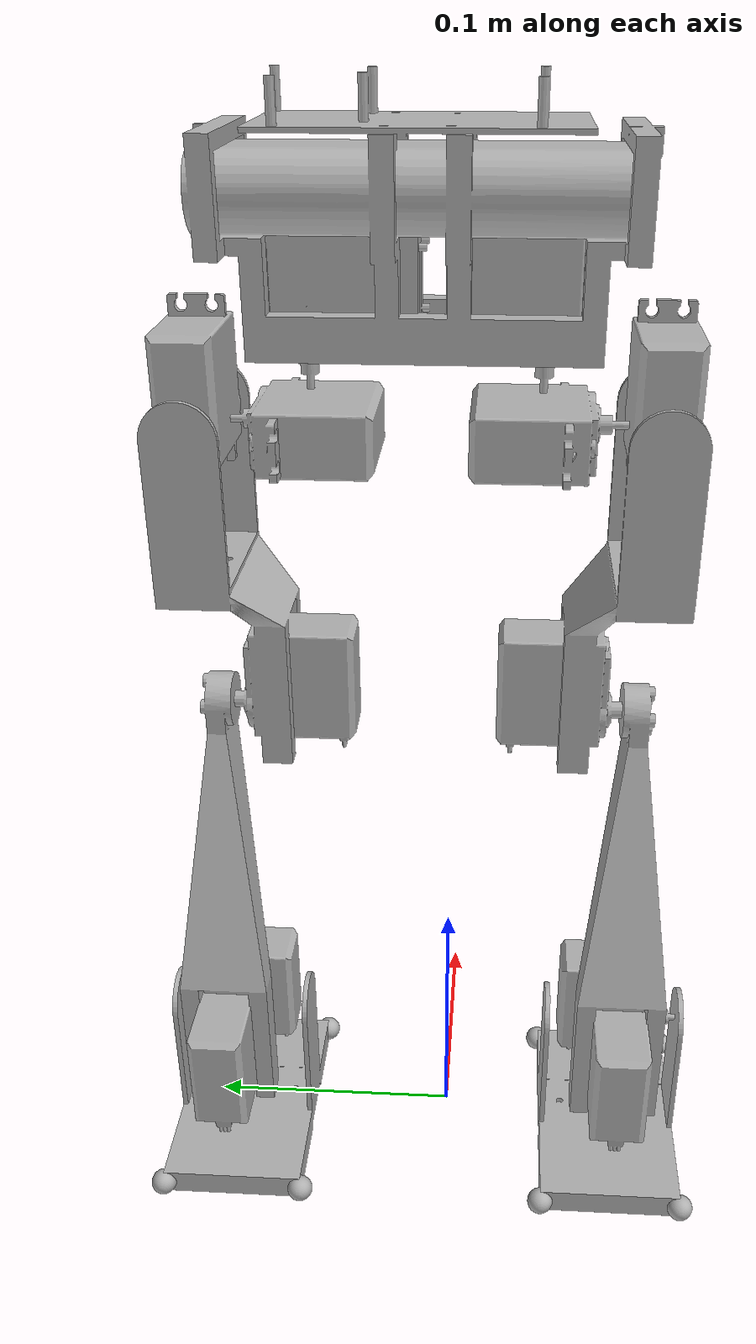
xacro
<?xml version="1.0" ?>
<robot name="URDF" xmlns:xacro="http://www.ros.org/wiki/xacro">

<xacro:include filename="$(find URDF_description)/urdf/materials.xacro" />
<xacro:include filename="$(find URDF_description)/urdf/URDF.trans" />
<xacro:include filename="$(find URDF_description)/urdf/URDF.gazebo" />
<link name="base_link">
  <inertial>
    <origin xyz="-0.011771950657531978 0.009504064144816108 0.37571758600306054" rpy="0 0 0"/>
    <mass value="1.511497628813241"/>
    <inertia ixx="0.002624" iyy="0.000685" izz="0.00252" ixy="-0.0" iyz="-1e-05" ixz="-1e-06"/>
  </inertial>
  <visual>
    <origin xyz="0 0 0" rpy="0 0 0"/>
    <geometry>
      <mesh filename="package://URDF_description/meshes/base_link.stl" scale="0.001 0.001 0.001"/>
    </geometry>
    <material name="silver"/>
  </visual>
  <collision>
    <origin xyz="0 0 0" rpy="0 0 0"/>
    <geometry>
      <mesh filename="package://URDF_description/meshes/base_link.stl" scale="0.001 0.001 0.001"/>
    </geometry>
  </collision>
</link>

<link name="l3_1">
  <inertial>
    <origin xyz="-0.0010554319034483655 -0.010177955025811834 0.009960650853470643" rpy="0 0 0"/>
    <mass value="0.2605710862815951"/>
    <inertia ixx="4.6e-05" iyy="7.1e-05" izz="4.2e-05" ixy="0.0" iyz="-0.0" ixz="1e-06"/>
  </inertial>
  <visual>
    <origin xyz="0.01125 0.056859 -0.309943" rpy="0 0 0"/>
    <geometry>
      <mesh filename="package://URDF_description/meshes/l3_1.stl" scale="0.001 0.001 0.001"/>
    </geometry>
    <material name="silver"/>
  </visual>
  <collision>
    <origin xyz="0.01125 0.056859 -0.309943" rpy="0 0 0"/>
    <geometry>
      <mesh filename="package://URDF_description/meshes/l3_1.stl" scale="0.001 0.001 0.001"/>
    </geometry>
  </collision>
</link>

<link name="r3_1">
  <inertial>
    <origin xyz="-0.0013721079730043672 0.010183257082743855 0.009960176961555767" rpy="0 0 0"/>
    <mass value="0.26058347817133687"/>
    <inertia ixx="4.6e-05" iyy="7.1e-05" izz="4.2e-05" ixy="-0.0" iyz="0.0" ixz="1e-06"/>
  </inertial>
  <visual>
    <origin xyz="0.010932 -0.07264 -0.309936" rpy="0 0 0"/>
    <geometry>
      <mesh filename="package://URDF_description/meshes/r3_1.stl" scale="0.001 0.001 0.001"/>
    </geometry>
    <material name="silver"/>
  </visual>
  <collision>
    <origin xyz="0.010932 -0.07264 -0.309936" rpy="0 0 0"/>
    <geometry>
      <mesh filename="package://URDF_description/meshes/r3_1.stl" scale="0.001 0.001 0.001"/>
    </geometry>
  </collision>
</link>

<link name="l4_1">
  <inertial>
    <origin xyz="-0.025108010465582926 0.020534482343404367 -0.07938539914440731" rpy="0 0 0"/>
    <mass value="0.4795683297989441"/>
    <inertia ixx="0.0005" iyy="0.000461" izz="0.000198" ixy="-3e-06" iyz="0.000142" ixz="6e-06"/>
  </inertial>
  <visual>
    <origin xyz="-0.015754 0.067037 -0.309943" rpy="0 0 0"/>
    <geometry>
      <mesh filename="package://URDF_description/meshes/l4_1.stl" scale="0.001 0.001 0.001"/>
    </geometry>
    <material name="silver"/>
  </visual>
  <collision>
    <origin xyz="-0.015754 0.067037 -0.309943" rpy="0 0 0"/>
    <geometry>
      <mesh filename="package://URDF_description/meshes/l4_1.stl" scale="0.001 0.001 0.001"/>
    </geometry>
  </collision>
</link>

<link name="l5_1">
  <inertial>
    <origin xyz="-0.029491082579912755 0.0039567541577464616 -0.10160071158979485" rpy="0 0 0"/>
    <mass value="0.5723786894338777"/>
    <inertia ixx="0.001158" iyy="0.001268" izz="0.00017" ixy="1e-06" iyz="2e-06" ixz="-0.000323"/>
  </inertial>
  <visual>
    <origin xyz="0.009024 0.071577 -0.204349" rpy="0 0 0"/>
    <geometry>
      <mesh filename="package://URDF_description/meshes/l5_1.stl" scale="0.001 0.001 0.001"/>
    </geometry>
    <material name="silver"/>
  </visual>
  <collision>
    <origin xyz="0.009024 0.071577 -0.204349" rpy="0 0 0"/>
    <geometry>
      <mesh filename="package://URDF_description/meshes/l5_1.stl" scale="0.001 0.001 0.001"/>
    </geometry>
  </collision>
</link>

<link name="l6_1">
  <inertial>
    <origin xyz="0.010148909868078046 0.0014454123231732174 0.009960197157854983" rpy="0 0 0"/>
    <mass value="0.260583085238151"/>
    <inertia ixx="7.1e-05" iyy="4.6e-05" izz="4.2e-05" ixy="0.0" iyz="-1e-06" ixz="0.0"/>
  </inertial>
  <visual>
    <origin xyz="0.018503 0.067568 -0.059644" rpy="0 0 0"/>
    <geometry>
      <mesh filename="package://URDF_description/meshes/l6_1.stl" scale="0.001 0.001 0.001"/>
    </geometry>
    <material name="silver"/>
  </visual>
  <collision>
    <origin xyz="0.018503 0.067568 -0.059644" rpy="0 0 0"/>
    <geometry>
      <mesh filename="package://URDF_description/meshes/l6_1.stl" scale="0.001 0.001 0.001"/>
    </geometry>
  </collision>
</link>

<link name="l7_1">
  <inertial>
    <origin xyz="-0.0038360250370360807 0.0260878632088187 -0.05053371254011363" rpy="0 0 0"/>
    <mass value="0.42535185084301863"/>
    <inertia ixx="0.000201" iyy="0.000374" izz="0.000441" ixy="-0.0" iyz="-0.0" ixz="-5e-06"/>
  </inertial>
  <visual>
    <origin xyz="0.008354 0.094498 -0.059644" rpy="0 0 0"/>
    <geometry>
      <mesh filename="package://URDF_description/meshes/l7_1.stl" scale="0.001 0.001 0.001"/>
    </geometry>
    <material name="silver"/>
  </visual>
  <collision>
    <origin xyz="0.008354 0.094498 -0.059644" rpy="0 0 0"/>
    <geometry>
      <mesh filename="package://URDF_description/meshes/l7_1.stl" scale="0.001 0.001 0.001"/>
    </geometry>
  </collision>
</link>

<link name="r4_1">
  <inertial>
    <origin xyz="-0.025086134509350884 -0.019584458432277033 -0.079385774761916" rpy="0 0 0"/>
    <mass value="0.4795660415586759"/>
    <inertia ixx="0.0005" iyy="0.000461" izz="0.000198" ixy="3e-06" iyz="-0.000142" ixz="6e-06"/>
  </inertial>
  <visual>
    <origin xyz="-0.016072 -0.082823 -0.309936" rpy="0 0 0"/>
    <geometry>
      <mesh filename="package://URDF_description/meshes/r4_1.stl" scale="0.001 0.001 0.001"/>
    </geometry>
    <material name="silver"/>
  </visual>
  <collision>
    <origin xyz="-0.016072 -0.082823 -0.309936" rpy="0 0 0"/>
    <geometry>
      <mesh filename="package://URDF_description/meshes/r4_1.stl" scale="0.001 0.001 0.001"/>
    </geometry>
  </collision>
</link>

<link name="r5_1">
  <inertial>
    <origin xyz="-0.029491076838213486 -0.003956632577474542 -0.10160065771634212" rpy="0 0 0"/>
    <mass value="0.5723780660401575"/>
    <inertia ixx="0.001158" iyy="0.001268" izz="0.00017" ixy="-1e-06" iyz="-2e-06" ixz="-0.000323"/>
  </inertial>
  <visual>
    <origin xyz="0.008684 -0.088313 -0.204342" rpy="0 0 0"/>
    <geometry>
      <mesh filename="package://URDF_description/meshes/r5_1.stl" scale="0.001 0.001 0.001"/>
    </geometry>
    <material name="silver"/>
  </visual>
  <collision>
    <origin xyz="0.008684 -0.088313 -0.204342" rpy="0 0 0"/>
    <geometry>
      <mesh filename="package://URDF_description/meshes/r5_1.stl" scale="0.001 0.001 0.001"/>
    </geometry>
  </collision>
</link>

<link name="r6_1">
  <inertial>
    <origin xyz="0.010216801636088587 -0.0014452836669605895 0.009960098254530765" rpy="0 0 0"/>
    <mass value="0.26058568857338693"/>
    <inertia ixx="7.1e-05" iyy="4.6e-05" izz="4.2e-05" ixy="-0.0" iyz="1e-06" ixz="0.0"/>
  </inertial>
  <visual>
    <origin xyz="0.018163 -0.084304 -0.059637" rpy="0 0 0"/>
    <geometry>
      <mesh filename="package://URDF_description/meshes/r6_1.stl" scale="0.001 0.001 0.001"/>
    </geometry>
    <material name="silver"/>
  </visual>
  <collision>
    <origin xyz="0.018163 -0.084304 -0.059637" rpy="0 0 0"/>
    <geometry>
      <mesh filename="package://URDF_description/meshes/r6_1.stl" scale="0.001 0.001 0.001"/>
    </geometry>
  </collision>
</link>

<link name="r7_1">
  <inertial>
    <origin xyz="-0.003836011886673152 -0.025999620351597932 -0.05053346533032452" rpy="0 0 0"/>
    <mass value="0.42535393165731183"/>
    <inertia ixx="0.000201" iyy="0.000374" izz="0.000441" ixy="0.0" iyz="0.0" ixz="-5e-06"/>
  </inertial>
  <visual>
    <origin xyz="0.007946 -0.111234 -0.059637" rpy="0 0 0"/>
    <geometry>
      <mesh filename="package://URDF_description/meshes/r7_1.stl" scale="0.001 0.001 0.001"/>
    </geometry>
    <material name="silver"/>
  </visual>
  <collision>
    <origin xyz="0.007946 -0.111234 -0.059637" rpy="0 0 0"/>
    <geometry>
      <mesh filename="package://URDF_description/meshes/r7_1.stl" scale="0.001 0.001 0.001"/>
    </geometry>
  </collision>
</link>

<link name="r1_1">
  <inertial>
    <origin xyz="0.0004996878831269973 0.02734500634448448 0.008967935691079287" rpy="0 0 0"/>
    <mass value="0.260645951134301"/>
    <inertia ixx="7.1e-05" iyy="4.2e-05" izz="4.6e-05" ixy="0.0" iyz="1e-06" ixz="0.0"/>
  </inertial>
  <visual>
    <origin xyz="0.011804 -0.008368 -0.341585" rpy="0 0 0"/>
    <geometry>
      <mesh filename="package://URDF_description/meshes/r1_1.stl" scale="0.001 0.001 0.001"/>
    </geometry>
    <material name="silver"/>
  </visual>
  <collision>
    <origin xyz="0.011804 -0.008368 -0.341585" rpy="0 0 0"/>
    <geometry>
      <mesh filename="package://URDF_description/meshes/r1_1.stl" scale="0.001 0.001 0.001"/>
    </geometry>
  </collision>
</link>

<link name="l1_1">
  <inertial>
    <origin xyz="0.0001816438125570169 -0.027343644786196337 0.008967461952591682" rpy="0 0 0"/>
    <mass value="0.260658112795213"/>
    <inertia ixx="7.1e-05" iyy="4.2e-05" izz="4.6e-05" ixy="-0.0" iyz="-1e-06" ixz="0.0"/>
  </inertial>
  <visual>
    <origin xyz="0.011804 -0.008368 -0.341585" rpy="0 0 0"/>
    <geometry>
      <mesh filename="package://URDF_description/meshes/l1_1.stl" scale="0.001 0.001 0.001"/>
    </geometry>
    <material name="silver"/>
  </visual>
  <collision>
    <origin xyz="0.011804 -0.008368 -0.341585" rpy="0 0 0"/>
    <geometry>
      <mesh filename="package://URDF_description/meshes/l1_1.stl" scale="0.001 0.001 0.001"/>
    </geometry>
  </collision>
</link>

<link name="l2_1">
  <inertial>
    <origin xyz="-0.009584482225170093 0.002892011357414799 -0.010241995308191532" rpy="0 0 0"/>
    <mass value="0.2606766909017712"/>
    <inertia ixx="4.2e-05" iyy="4.6e-05" izz="7.1e-05" ixy="1e-06" iyz="-0.0" ixz="0.0"/>
  </inertial>
  <visual>
    <origin xyz="0.011622 0.028932 -0.320185" rpy="0 0 0"/>
    <geometry>
      <mesh filename="package://URDF_description/meshes/l2_1.stl" scale="0.001 0.001 0.001"/>
    </geometry>
    <material name="silver"/>
  </visual>
  <collision>
    <origin xyz="0.011622 0.028932 -0.320185" rpy="0 0 0"/>
    <geometry>
      <mesh filename="package://URDF_description/meshes/l2_1.stl" scale="0.001 0.001 0.001"/>
    </geometry>
  </collision>
</link>

<link name="r2_1">
  <inertial>
    <origin xyz="-0.00958582114085108 -0.0028961550072012995 -0.010248919205406881" rpy="0 0 0"/>
    <mass value="0.2606418768017664"/>
    <inertia ixx="4.2e-05" iyy="4.6e-05" izz="7.1e-05" ixy="-1e-06" iyz="0.0" ixz="0.0"/>
  </inertial>
  <visual>
    <origin xyz="0.011304 -0.045668 -0.320185" rpy="0 0 0"/>
    <geometry>
      <mesh filename="package://URDF_description/meshes/r2_1.stl" scale="0.001 0.001 0.001"/>
    </geometry>
    <material name="silver"/>
  </visual>
  <collision>
    <origin xyz="0.011304 -0.045668 -0.320185" rpy="0 0 0"/>
    <geometry>
      <mesh filename="package://URDF_description/meshes/r2_1.stl" scale="0.001 0.001 0.001"/>
    </geometry>
  </collision>
</link>

<link name="Component135_1">
  <inertial>
    <origin xyz="2.3019366229143357e-07 -3.5453788085892946e-07 8.673617379884035e-18" rpy="0 0 0"/>
    <mass value="0.004110250388446646"/>
    <inertia ixx="0.0" iyy="0.0" izz="0.0" ixy="0.0" iyz="-0.0" ixz="0.0"/>
  </inertial>
  <visual>
    <origin xyz="-0.034846 0.09641 -0.005" rpy="0 0 0"/>
    <geometry>
      <mesh filename="package://URDF_description/meshes/Component135_1.stl" scale="0.001 0.001 0.001"/>
    </geometry>
    <material name="silver"/>
  </visual>
  <collision>
    <origin xyz="-0.034846 0.09641 -0.005" rpy="0 0 0"/>
    <geometry>
      <mesh filename="package://URDF_description/meshes/Component135_1.stl" scale="0.001 0.001 0.001"/>
    </geometry>
  </collision>
</link>

<link name="Component136_1">
  <inertial>
    <origin xyz="2.3019366243715034e-07 -3.545378806646404e-07 6.938893903907228e-18" rpy="0 0 0"/>
    <mass value="0.004110250388446646"/>
    <inertia ixx="0.0" iyy="0.0" izz="0.0" ixy="-0.0" iyz="-0.0" ixz="0.0"/>
  </inertial>
  <visual>
    <origin xyz="-0.034846 0.04041 -0.005" rpy="0 0 0"/>
    <geometry>
      <mesh filename="package://URDF_description/meshes/Component136_1.stl" scale="0.001 0.001 0.001"/>
    </geometry>
    <material name="silver"/>
  </visual>
  <collision>
    <origin xyz="-0.034846 0.04041 -0.005" rpy="0 0 0"/>
    <geometry>
      <mesh filename="package://URDF_description/meshes/Component136_1.stl" scale="0.001 0.001 0.001"/>
    </geometry>
  </collision>
</link>

<link name="Component137_1">
  <inertial>
    <origin xyz="-6.809328641915746e-08 -3.5453788074790715e-07 -3.0357660829594124e-17" rpy="0 0 0"/>
    <mass value="0.004110250388446646"/>
    <inertia ixx="0.0" iyy="0.0" izz="0.0" ixy="-0.0" iyz="-0.0" ixz="0.0"/>
  </inertial>
  <visual>
    <origin xyz="0.059376 0.09641 -0.005" rpy="0 0 0"/>
    <geometry>
      <mesh filename="package://URDF_description/meshes/Component137_1.stl" scale="0.001 0.001 0.001"/>
    </geometry>
    <material name="silver"/>
  </visual>
  <collision>
    <origin xyz="0.059376 0.09641 -0.005" rpy="0 0 0"/>
    <geometry>
      <mesh filename="package://URDF_description/meshes/Component137_1.stl" scale="0.001 0.001 0.001"/>
    </geometry>
  </collision>
</link>

<link name="Component138_1">
  <inertial>
    <origin xyz="-6.809328703671902e-08 -3.545378805952515e-07 -3.209238430557093e-17" rpy="0 0 0"/>
    <mass value="0.004110250388446646"/>
    <inertia ixx="0.0" iyy="0.0" izz="0.0" ixy="0.0" iyz="0.0" ixz="0.0"/>
  </inertial>
  <visual>
    <origin xyz="0.059376 0.04041 -0.005" rpy="0 0 0"/>
    <geometry>
      <mesh filename="package://URDF_description/meshes/Component138_1.stl" scale="0.001 0.001 0.001"/>
    </geometry>
    <material name="silver"/>
  </visual>
  <collision>
    <origin xyz="0.059376 0.04041 -0.005" rpy="0 0 0"/>
    <geometry>
      <mesh filename="package://URDF_description/meshes/Component138_1.stl" scale="0.001 0.001 0.001"/>
    </geometry>
  </collision>
</link>

<link name="Component139_1">
  <inertial>
    <origin xyz="-7.370735422007613e-08 4.699046756151404e-07 3.877106968808164e-16" rpy="0 0 0"/>
    <mass value="0.004110250388446646"/>
    <inertia ixx="0.0" iyy="0.0" izz="0.0" ixy="-0.0" iyz="0.0" ixz="-0.0"/>
  </inertial>
  <visual>
    <origin xyz="0.058968 -0.057234 -0.004993" rpy="0 0 0"/>
    <geometry>
      <mesh filename="package://URDF_description/meshes/Component139_1.stl" scale="0.001 0.001 0.001"/>
    </geometry>
    <material name="silver"/>
  </visual>
  <collision>
    <origin xyz="0.058968 -0.057234 -0.004993" rpy="0 0 0"/>
    <geometry>
      <mesh filename="package://URDF_description/meshes/Component139_1.stl" scale="0.001 0.001 0.001"/>
    </geometry>
  </collision>
</link>

<link name="Component140_1">
  <inertial>
    <origin xyz="-7.370735562867159e-08 4.6990467575391826e-07 5.386316392907986e-16" rpy="0 0 0"/>
    <mass value="0.004110250388446646"/>
    <inertia ixx="0.0" iyy="0.0" izz="0.0" ixy="-0.0" iyz="0.0" ixz="0.0"/>
  </inertial>
  <visual>
    <origin xyz="0.058968 -0.113234 -0.004993" rpy="0 0 0"/>
    <geometry>
      <mesh filename="package://URDF_description/meshes/Component140_1.stl" scale="0.001 0.001 0.001"/>
    </geometry>
    <material name="silver"/>
  </visual>
  <collision>
    <origin xyz="0.058968 -0.113234 -0.004993" rpy="0 0 0"/>
    <geometry>
      <mesh filename="package://URDF_description/meshes/Component140_1.stl" scale="0.001 0.001 0.001"/>
    </geometry>
  </collision>
</link>

<link name="Component141_1">
  <inertial>
    <origin xyz="2.2457959308191944e-07 4.69904679237243e-07 5.776629175002768e-16" rpy="0 0 0"/>
    <mass value="0.004110250388446646"/>
    <inertia ixx="0.0" iyy="0.0" izz="0.0" ixy="0.0" iyz="0.0" ixz="0.0"/>
  </inertial>
  <visual>
    <origin xyz="-0.035254 -0.113234 -0.004993" rpy="0 0 0"/>
    <geometry>
      <mesh filename="package://URDF_description/meshes/Component141_1.stl" scale="0.001 0.001 0.001"/>
    </geometry>
    <material name="silver"/>
  </visual>
  <collision>
    <origin xyz="-0.035254 -0.113234 -0.004993" rpy="0 0 0"/>
    <geometry>
      <mesh filename="package://URDF_description/meshes/Component141_1.stl" scale="0.001 0.001 0.001"/>
    </geometry>
  </collision>
</link>

<link name="Component142_1">
  <inertial>
    <origin xyz="2.2457959523991544e-07 4.6990467907764844e-07 4.2760933682828295e-16" rpy="0 0 0"/>
    <mass value="0.004110250388446646"/>
    <inertia ixx="0.0" iyy="0.0" izz="0.0" ixy="-0.0" iyz="0.0" ixz="0.0"/>
  </inertial>
  <visual>
    <origin xyz="-0.035254 -0.057234 -0.004993" rpy="0 0 0"/>
    <geometry>
      <mesh filename="package://URDF_description/meshes/Component142_1.stl" scale="0.001 0.001 0.001"/>
    </geometry>
    <material name="silver"/>
  </visual>
  <collision>
    <origin xyz="-0.035254 -0.057234 -0.004993" rpy="0 0 0"/>
    <geometry>
      <mesh filename="package://URDF_description/meshes/Component142_1.stl" scale="0.001 0.001 0.001"/>
    </geometry>
  </collision>
</link>

<joint name="Revolute 46" type="continuous">
  <origin xyz="0.000372 -0.027927 -0.010242" rpy="0 0 0"/>
  <parent link="l2_1"/>
  <child link="l3_1"/>
  <axis xyz="-0.0 -1.0 -0.0"/>
</joint>

<joint name="Revolute 54" type="continuous">
  <origin xyz="0.000372 0.026972 -0.010249" rpy="0 0 0"/>
  <parent link="r2_1"/>
  <child link="r3_1"/>
  <axis xyz="-0.0 1.0 0.0"/>
</joint>

<joint name="Revolute 66" type="continuous">
  <origin xyz="0.027004 -0.010178 0.0" rpy="0 0 0"/>
  <parent link="l3_1"/>
  <child link="l4_1"/>
  <axis xyz="1.0 0.0 -0.0"/>
</joint>

<joint name="Revolute 67" type="continuous">
  <origin xyz="-0.024778 -0.00454 -0.105594" rpy="0 0 0"/>
  <parent link="l4_1"/>
  <child link="l5_1"/>
  <axis xyz="-0.0 -1.0 0.0"/>
</joint>

<joint name="Revolute 68" type="continuous">
  <origin xyz="-0.009479 0.004009 -0.144705" rpy="0 0 0"/>
  <parent link="l5_1"/>
  <child link="l6_1"/>
  <axis xyz="1.0 0.0 0.0"/>
</joint>

<joint name="Revolute 69" type="continuous">
  <origin xyz="0.010149 -0.02693 0.0" rpy="0 0 0"/>
  <parent link="l6_1"/>
  <child link="l7_1"/>
  <axis xyz="0.0 -1.0 0.0"/>
</joint>

<joint name="Revolute 70" type="continuous">
  <origin xyz="0.027004 0.010183 0.0" rpy="0 0 0"/>
  <parent link="r3_1"/>
  <child link="r4_1"/>
  <axis xyz="1.0 0.0 -0.0"/>
</joint>

<joint name="Revolute 71" type="continuous">
  <origin xyz="-0.024756 0.00549 -0.105594" rpy="0 0 0"/>
  <parent link="r4_1"/>
  <child link="r5_1"/>
  <axis xyz="-0.0 1.0 0.0"/>
</joint>

<joint name="Revolute 72" type="continuous">
  <origin xyz="-0.009479 -0.004009 -0.144705" rpy="0 0 0"/>
  <parent link="r5_1"/>
  <child link="r6_1"/>
  <axis xyz="1.0 0.0 -0.0"/>
</joint>

<joint name="Revolute 73" type="continuous">
  <origin xyz="0.010217 0.02693 0.0" rpy="0 0 0"/>
  <parent link="r6_1"/>
  <child link="r7_1"/>
  <axis xyz="-0.0 1.0 0.0"/>
</joint>

<joint name="Revolute 90" type="continuous">
  <origin xyz="-0.011804 0.008368 0.341585" rpy="0 0 0"/>
  <parent link="base_link"/>
  <child link="r1_1"/>
  <axis xyz="0.0 0.0 1.0"/>
</joint>

<joint name="Revolute 91" type="continuous">
  <origin xyz="-0.011804 0.008368 0.341585" rpy="0 0 0"/>
  <parent link="base_link"/>
  <child link="l1_1"/>
  <axis xyz="0.0 0.0 1.0"/>
</joint>

<joint name="Revolute 92" type="continuous">
  <origin xyz="0.000182 -0.0373 -0.0214" rpy="0 0 0"/>
  <parent link="l1_1"/>
  <child link="l2_1"/>
  <axis xyz="-0.0 -0.0 -1.0"/>
</joint>

<joint name="Revolute 93" type="continuous">
  <origin xyz="0.0005 0.0373 -0.0214" rpy="0 0 0"/>
  <parent link="r1_1"/>
  <child link="r2_1"/>
  <axis xyz="-0.0 0.0 -1.0"/>
</joint>

<joint name="Rigid 94" type="fixed">
  <origin xyz="0.0432 -0.001912 -0.054644" rpy="0 0 0"/>
  <parent link="l7_1"/>
  <child link="Component135_1"/>
</joint>

<joint name="Rigid 95" type="fixed">
  <origin xyz="0.0432 0.054088 -0.054644" rpy="0 0 0"/>
  <parent link="l7_1"/>
  <child link="Component136_1"/>
</joint>

<joint name="Rigid 96" type="fixed">
  <origin xyz="-0.051022 -0.001912 -0.054644" rpy="0 0 0"/>
  <parent link="l7_1"/>
  <child link="Component137_1"/>
</joint>

<joint name="Rigid 97" type="fixed">
  <origin xyz="-0.051022 0.054088 -0.054644" rpy="0 0 0"/>
  <parent link="l7_1"/>
  <child link="Component138_1"/>
</joint>

<joint name="Rigid 98" type="fixed">
  <origin xyz="-0.051022 -0.054 -0.054644" rpy="0 0 0"/>
  <parent link="r7_1"/>
  <child link="Component139_1"/>
</joint>

<joint name="Rigid 99" type="fixed">
  <origin xyz="-0.051022 0.002 -0.054644" rpy="0 0 0"/>
  <parent link="r7_1"/>
  <child link="Component140_1"/>
</joint>

<joint name="Rigid 100" type="fixed">
  <origin xyz="0.0432 0.002 -0.054644" rpy="0 0 0"/>
  <parent link="r7_1"/>
  <child link="Component141_1"/>
</joint>

<joint name="Rigid 101" type="fixed">
  <origin xyz="0.0432 -0.054 -0.054644" rpy="0 0 0"/>
  <parent link="r7_1"/>
  <child link="Component142_1"/>
</joint>

</robot>

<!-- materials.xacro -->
<robot name="URDF" xmlns:xacro="http://www.ros.org/wiki/xacro" >

<material name="silver">
  <color rgba="0.700 0.700 0.700 1.000"/>
</material>

</robot>

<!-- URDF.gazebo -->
<robot name="URDF" xmlns:xacro="http://www.ros.org/wiki/xacro" >

<xacro:property name="body_color" value="Gazebo/Silver" />

<gazebo>
  <plugin name="control" filename="libgazebo_ros_control.so"/>
</gazebo>
<gazebo reference="base_link">
  <material>${body_color}</material>
  <mu1>0.2</mu1>
  <mu2>0.2</mu2>
  <selfCollide>true</selfCollide>
  <gravity>true</gravity>
</gazebo>

<gazebo reference="l3_1">
  <material>${body_color}</material>
  <mu1>0.2</mu1>
  <mu2>0.2</mu2>
  <selfCollide>true</selfCollide>
</gazebo>

<gazebo reference="r3_1">
  <material>${body_color}</material>
  <mu1>0.2</mu1>
  <mu2>0.2</mu2>
  <selfCollide>true</selfCollide>
</gazebo>

<gazebo reference="l4_1">
  <material>${body_color}</material>
  <mu1>0.2</mu1>
  <mu2>0.2</mu2>
  <selfCollide>true</selfCollide>
</gazebo>

<gazebo reference="l5_1">
  <material>${body_color}</material>
  <mu1>0.2</mu1>
  <mu2>0.2</mu2>
  <selfCollide>true</selfCollide>
</gazebo>

<gazebo reference="l6_1">
  <material>${body_color}</material>
  <mu1>0.2</mu1>
  <mu2>0.2</mu2>
  <selfCollide>true</selfCollide>
</gazebo>

<gazebo reference="l7_1">
  <material>${body_color}</material>
  <mu1>0.2</mu1>
  <mu2>0.2</mu2>
  <selfCollide>true</selfCollide>
</gazebo>

<gazebo reference="r4_1">
  <material>${body_color}</material>
  <mu1>0.2</mu1>
  <mu2>0.2</mu2>
  <selfCollide>true</selfCollide>
</gazebo>

<gazebo reference="r5_1">
  <material>${body_color}</material>
  <mu1>0.2</mu1>
  <mu2>0.2</mu2>
  <selfCollide>true</selfCollide>
</gazebo>

<gazebo reference="r6_1">
  <material>${body_color}</material>
  <mu1>0.2</mu1>
  <mu2>0.2</mu2>
  <selfCollide>true</selfCollide>
</gazebo>

<gazebo reference="r7_1">
  <material>${body_color}</material>
  <mu1>0.2</mu1>
  <mu2>0.2</mu2>
  <selfCollide>true</selfCollide>
</gazebo>

<gazebo reference="r1_1">
  <material>${body_color}</material>
  <mu1>0.2</mu1>
  <mu2>0.2</mu2>
  <selfCollide>true</selfCollide>
</gazebo>

<gazebo reference="l1_1">
  <material>${body_color}</material>
  <mu1>0.2</mu1>
  <mu2>0.2</mu2>
  <selfCollide>true</selfCollide>
</gazebo>

<gazebo reference="l2_1">
  <material>${body_color}</material>
  <mu1>0.2</mu1>
  <mu2>0.2</mu2>
  <selfCollide>true</selfCollide>
</gazebo>

<gazebo reference="r2_1">
  <material>${body_color}</material>
  <mu1>0.2</mu1>
  <mu2>0.2</mu2>
  <selfCollide>true</selfCollide>
</gazebo>

<gazebo reference="Component135_1">
  <material>${body_color}</material>
  <mu1>0.2</mu1>
  <mu2>0.2</mu2>
  <selfCollide>true</selfCollide>
</gazebo>

<gazebo reference="Component136_1">
  <material>${body_color}</material>
  <mu1>0.2</mu1>
  <mu2>0.2</mu2>
  <selfCollide>true</selfCollide>
</gazebo>

<gazebo reference="Component137_1">
  <material>${body_color}</material>
  <mu1>0.2</mu1>
  <mu2>0.2</mu2>
  <selfCollide>true</selfCollide>
</gazebo>

<gazebo reference="Component138_1">
  <material>${body_color}</material>
  <mu1>0.2</mu1>
  <mu2>0.2</mu2>
  <selfCollide>true</selfCollide>
</gazebo>

<gazebo reference="Component139_1">
  <material>${body_color}</material>
  <mu1>0.2</mu1>
  <mu2>0.2</mu2>
  <selfCollide>true</selfCollide>
</gazebo>

<gazebo reference="Component140_1">
  <material>${body_color}</material>
  <mu1>0.2</mu1>
  <mu2>0.2</mu2>
  <selfCollide>true</selfCollide>
</gazebo>

<gazebo reference="Component141_1">
  <material>${body_color}</material>
  <mu1>0.2</mu1>
  <mu2>0.2</mu2>
  <selfCollide>true</selfCollide>
</gazebo>

<gazebo reference="Component142_1">
  <material>${body_color}</material>
  <mu1>0.2</mu1>
  <mu2>0.2</mu2>
  <selfCollide>true</selfCollide>
</gazebo>

</robot>
